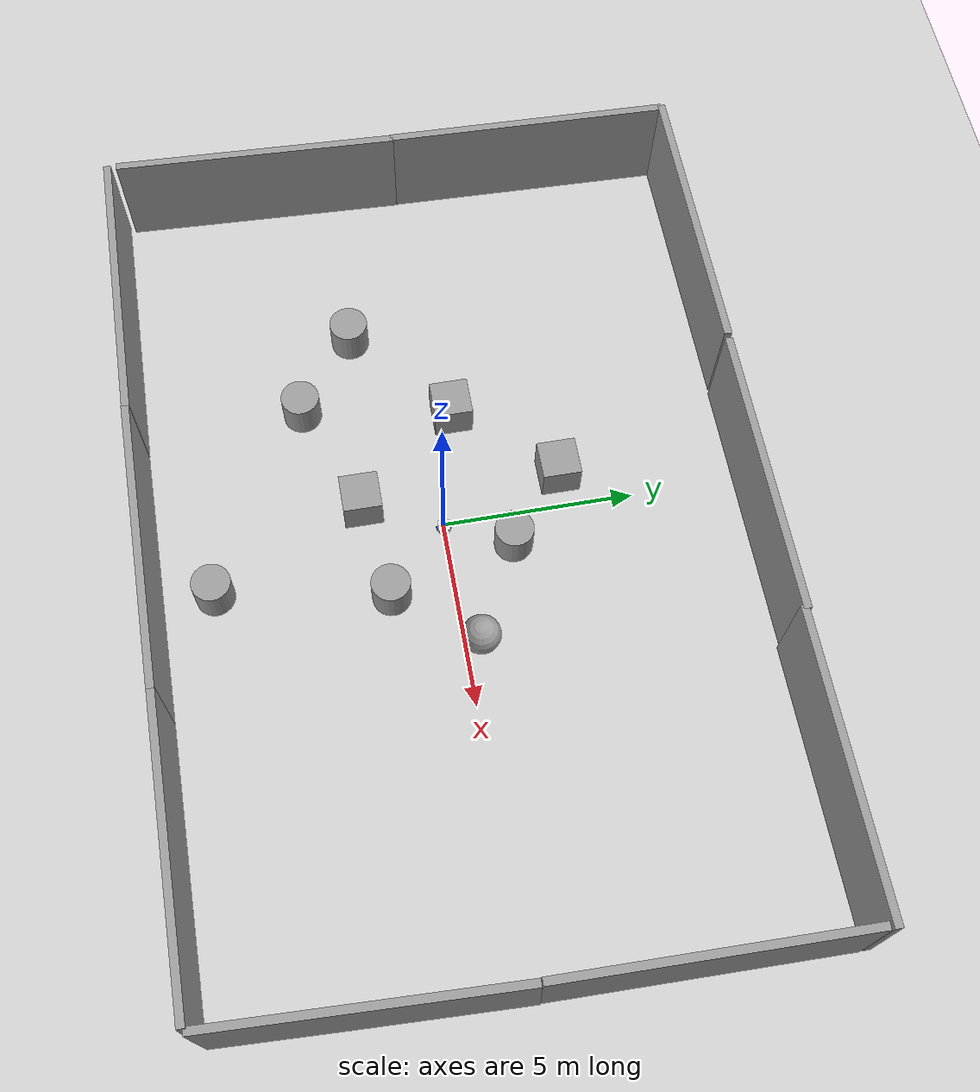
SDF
<sdf version="1.7">
 <world name="default">
  <light name="sun" type="directional">
   <pose>0 0 10 0 -0 0</pose>
   <diffuse>0.8 0.8 0.8 1</diffuse>
   <specular>0.2 0.2 0.2 1</specular>
   <attenuation>
    <range>1000</range>
    <constant>0.9</constant>
    <linear>0.01</linear>
    <quadratic>0.001</quadratic>
   </attenuation>
   <direction>-0.5 0.1 -0.9</direction>
   <spot><inner_angle>0</inner_angle><outer_angle>0</outer_angle><falloff>0</falloff></spot>
  </light>
  <model name="ground_plane">
   <static>1</static>
   <link name="link">
    <collision name="collision">
     <geometry><plane><normal>0 0 1</normal><size>100 100</size></plane></geometry>
     <surface><friction><ode><mu>100</mu><mu2>50</mu2></ode></friction></surface>
    </collision>
    <visual name="visual">
     <cast_shadows>0</cast_shadows>
     <geometry><plane><normal>0 0 1</normal><size>100 100</size></plane></geometry>
     <material>
      <script><uri>file://media/materials/scripts/gazebo.material</uri><name>Gazebo/Grey</name></script>
     </material>
    </visual>
   </link>
  </model>
  <gravity>0 0 -9.8</gravity>
  <magnetic_field>6e-06 2.3e-05 -4.2e-05</magnetic_field>
  <atmosphere type="adiabatic"/>
  <physics type="ode">
   <max_step_size>0.001</max_step_size>
   <real_time_factor>1</real_time_factor>
   <real_time_update_rate>1000</real_time_update_rate>
  </physics>
  <scene><ambient>0.4 0.4 0.4 1</ambient><background>0.7 0.7 0.7 1</background><shadows>1</shadows></scene>
  <audio><device>default</device></audio>
  <spherical_coordinates>
   <surface_model>EARTH_WGS84</surface_model>
   <latitude_deg>0</latitude_deg>
   <longitude_deg>0</longitude_deg>
   <elevation>0</elevation>
   <heading_deg>0</heading_deg>
  </spherical_coordinates>
  <model name="my_bot">
   <link name="base_link">
    <inertial>
     <pose>0.047 0 0.055 0 -0 0</pose>
     <mass>1</mass>
     <inertia>
      <ixx>0.0126103</ixx>
      <ixy>1.0842e-19</ixy>
      <ixz>0.00071</ixz>
      <iyy>0.0124313</iyy>
      <iyz>0</iyz>
      <izz>0.017283</izz>
     </inertia>
    </inertial>
    <collision name="base_link_fixed_joint_lump__chassis_collision">
     <pose>0.05 0 0.075 0 -0 0</pose>
     <geometry><box><size>0.3 0.3 0.15</size></box></geometry>
    </collision>
    <collision name="base_link_fixed_joint_lump__caster_wheel1_collision_1">
     <pose>0.16 -0.11 0 0 -0 0</pose>
     <geometry><sphere><radius>0.03</radius></sphere></geometry>
     <surface><friction><ode><mu>0.001</mu><mu2>0.001</mu2></ode></friction></surface>
    </collision>
    <collision name="base_link_fixed_joint_lump__caster_wheel2_collision_2">
     <pose>0.16 0.11 0 0 -0 0</pose>
     <geometry><sphere><radius>0.03</radius></sphere></geometry>
     <surface><friction><ode><mu>0.001</mu><mu2>0.001</mu2></ode></friction></surface>
    </collision>
    <collision name="base_link_fixed_joint_lump__caster_wheel3_collision_3">
     <pose>-0.05 0.11 0 0 -0 0</pose>
     <geometry><sphere><radius>0.03</radius></sphere></geometry>
     <surface><friction><ode><mu>0.001</mu><mu2>0.001</mu2></ode></friction></surface>
    </collision>
    <collision name="base_link_fixed_joint_lump__caster_wheel4_collision_4">
     <pose>-0.05 -0.11 0 0 -0 0</pose>
     <geometry><sphere><radius>0.035</radius></sphere></geometry>
     <surface><friction><ode><mu>0.001</mu><mu2>0.001</mu2></ode></friction></surface>
    </collision>
    <collision name="base_link_fixed_joint_lump__laser_frame_collision_5">
     <pose>0 0 0.175 0 -0 0</pose>
     <geometry><cylinder><length>0.04</length><radius>0.05</radius></cylinder></geometry>
    </collision>
    <visual name="base_link_fixed_joint_lump__chassis_visual">
     <pose>0.05 0 0.075 0 -0 0</pose>
     <geometry><box><size>0.3 0.3 0.15</size></box></geometry>
     <material>
      <script><name>Gazebo/White</name><uri>file://media/materials/scripts/gazebo.material</uri></script>
     </material>
    </visual>
    <visual name="base_link_fixed_joint_lump__caster_wheel1_visual_1">
     <pose>0.16 -0.11 0 0 -0 0</pose>
     <geometry><sphere><radius>0.03</radius></sphere></geometry>
     <material>
      <script><name>Gazebo/Black</name><uri>file://media/materials/scripts/gazebo.material</uri></script>
     </material>
    </visual>
    <visual name="base_link_fixed_joint_lump__caster_wheel2_visual_2">
     <pose>0.16 0.11 0 0 -0 0</pose>
     <geometry><sphere><radius>0.03</radius></sphere></geometry>
     <material>
      <script><name>Gazebo/Black</name><uri>file://media/materials/scripts/gazebo.material</uri></script>
     </material>
    </visual>
    <visual name="base_link_fixed_joint_lump__caster_wheel3_visual_3">
     <pose>-0.05 0.11 0 0 -0 0</pose>
     <geometry><sphere><radius>0.03</radius></sphere></geometry>
     <material>
      <script><name>Gazebo/Black</name><uri>file://media/materials/scripts/gazebo.material</uri></script>
     </material>
    </visual>
    <visual name="base_link_fixed_joint_lump__caster_wheel4_visual_4">
     <pose>-0.05 -0.11 0 0 -0 0</pose>
     <geometry><sphere><radius>0.035</radius></sphere></geometry>
     <material>
      <script><name>Gazebo/Black</name><uri>file://media/materials/scripts/gazebo.material</uri></script>
     </material>
    </visual>
    <visual name="base_link_fixed_joint_lump__laser_frame_visual_5">
     <pose>0 0 0.175 0 -0 0</pose>
     <geometry><cylinder><length>0.04</length><radius>0.05</radius></cylinder></geometry>
     <material>
      <script><name>Gazebo/Red</name><uri>file://media/materials/scripts/gazebo.material</uri></script>
     </material>
    </visual>
    <sensor name="laser" type="ray">
     <visualize>1</visualize>
     <update_rate>10</update_rate>
     <ray>
      <scan>
       <horizontal>
        <samples>360</samples>
        <min_angle>-3.14</min_angle>
        <max_angle>3.14</max_angle>
        <resolution>1</resolution>
       </horizontal>
       <vertical><samples>1</samples><min_angle>0</min_angle><max_angle>0</max_angle></vertical>
      </scan>
      <range><min>0.3</min><max>12</max></range>
     </ray>
     <plugin name="laser_controller" filename="libgazebo_ros_ray_sensor.so">
      <ros><argument>~/out:=scan</argument></ros>
      <output_type>sensor_msgs/LaserScan</output_type>
      <frame_name>laser_frame</frame_name>
     </plugin>
     <pose>0 0 0.175 0 -0 0</pose>
    </sensor>
   </link>
   <joint name="left_wheel_joint" type="revolute">
    <pose relative_to="base_link">0.06 0.175 0.015 -1.5708 0 0</pose>
    <parent>base_link</parent>
    <child>left_wheel</child>
    <axis>
     <xyz>0 0 1</xyz>
     <limit><lower>-1e+16</lower><upper>1e+16</upper></limit>
     <dynamics><spring_reference>0</spring_reference><spring_stiffness>0</spring_stiffness></dynamics>
    </axis>
   </joint>
   <link name="left_wheel">
    <pose relative_to="left_wheel_joint">0 0 0 0 -0 0</pose>
    <inertial>
     <mass>0.1</mass>
     <inertia>
      <ixx>8.84333e-05</ixx>
      <ixy>0</ixy>
      <ixz>0</ixz>
      <iyy>8.84333e-05</iyy>
      <iyz>0</iyz>
      <izz>0.0001352</izz>
     </inertia>
    </inertial>
    <collision name="left_wheel_collision">
     <geometry><cylinder><length>0.04</length><radius>0.052</radius></cylinder></geometry>
    </collision>
    <visual name="left_wheel_visual">
     <geometry><cylinder><length>0.04</length><radius>0.052</radius></cylinder></geometry>
     <material>
      <script><name>Gazebo/Blue</name><uri>file://media/materials/scripts/gazebo.material</uri></script>
     </material>
    </visual>
   </link>
   <joint name="right_wheel_joint" type="revolute">
    <pose relative_to="base_link">0.06 -0.175 0.015 1.5708 -0 0</pose>
    <parent>base_link</parent>
    <child>right_wheel</child>
    <axis>
     <xyz>0 0 -1</xyz>
     <limit><lower>-1e+16</lower><upper>1e+16</upper></limit>
     <dynamics><spring_reference>0</spring_reference><spring_stiffness>0</spring_stiffness></dynamics>
    </axis>
   </joint>
   <link name="right_wheel">
    <pose relative_to="right_wheel_joint">0 0 0 0 -0 0</pose>
    <inertial>
     <mass>0.1</mass>
     <inertia>
      <ixx>8.84333e-05</ixx>
      <ixy>0</ixy>
      <ixz>0</ixz>
      <iyy>8.84333e-05</iyy>
      <iyz>0</iyz>
      <izz>0.0001352</izz>
     </inertia>
    </inertial>
    <collision name="right_wheel_collision">
     <geometry><cylinder><length>0.04</length><radius>0.052</radius></cylinder></geometry>
    </collision>
    <visual name="right_wheel_visual">
     <geometry><cylinder><length>0.04</length><radius>0.052</radius></cylinder></geometry>
     <material>
      <script><name>Gazebo/Blue</name><uri>file://media/materials/scripts/gazebo.material</uri></script>
     </material>
    </visual>
   </link>
   <static>0</static>
   <plugin name="diff_drive" filename="libgazebo_ros_diff_drive.so">
    <left_joint>left_wheel_joint</left_joint>
    <right_joint>right_wheel_joint</right_joint>
    <wheel_separation>0.35</wheel_separation>
    <wheel_diameter>0.1</wheel_diameter>
    <max_wheel_torque>200</max_wheel_torque>
    <max_wheel_acceleration>10.0</max_wheel_acceleration>
    <odometry_frame>odom</odometry_frame>
    <robot_base_frame>base_link</robot_base_frame>
    <publish_odom>1</publish_odom>
    <publish_odom_tf>1</publish_odom_tf>
    <publish_wheel_tf>1</publish_wheel_tf>
   </plugin>
   <pose>0.04991 -0.002144 0.035911 1e-06 -0.018209 -0.010701</pose>
  </model>
  <model name="unit_cylinder">
   <pose>1.79229 -1.62107 0.499998 3e-06 -2e-06 0</pose>
   <link name="link">
    <inertial>
     <mass>1</mass>
     <inertia><ixx>0.145833</ixx><ixy>0</ixy><ixz>0</ixz><iyy>0.145833</iyy><iyz>0</iyz><izz>0.125</izz></inertia>
    </inertial>
    <collision name="collision">
     <geometry><cylinder><radius>0.5</radius><length>1</length></cylinder></geometry>
    </collision>
    <visual name="visual">
     <geometry><cylinder><radius>0.5</radius><length>1</length></cylinder></geometry>
     <material>
      <script><name>Gazebo/Grey</name><uri>file://media/materials/scripts/gazebo.material</uri></script>
     </material>
    </visual>
   </link>
  </model>
  <model name="unit_box">
   <pose>-0.832031 -2.00817 0.499995 0 -1e-05 0</pose>
   <link name="link">
    <inertial>
     <mass>1</mass>
     <inertia>
      <ixx>0.166667</ixx>
      <ixy>0</ixy>
      <ixz>0</ixz>
      <iyy>0.166667</iyy>
      <iyz>0</iyz>
      <izz>0.166667</izz>
     </inertia>
    </inertial>
    <collision name="collision"><geometry><box><size>1 1 1</size></box></geometry></collision>
    <visual name="visual">
     <geometry><box><size>1 1 1</size></box></geometry>
     <material>
      <script><name>Gazebo/Grey</name><uri>file://media/materials/scripts/gazebo.material</uri></script>
     </material>
    </visual>
   </link>
  </model>
  <model name="unit_cylinder_0">
   <pose>0.85268 1.68821 0.499994 -4e-06 -4e-06 -0</pose>
   <link name="link">
    <inertial>
     <mass>1</mass>
     <inertia><ixx>0.145833</ixx><ixy>0</ixy><ixz>0</ixz><iyy>0.145833</iyy><iyz>0</iyz><izz>0.125</izz></inertia>
    </inertial>
    <collision name="collision">
     <geometry><cylinder><radius>0.5</radius><length>1</length></cylinder></geometry>
    </collision>
    <visual name="visual">
     <geometry><cylinder><radius>0.5</radius><length>1</length></cylinder></geometry>
     <material>
      <script><name>Gazebo/Grey</name><uri>file://media/materials/scripts/gazebo.material</uri></script>
     </material>
    </visual>
   </link>
  </model>
  <model name="unit_box_0">
   <pose>-3.14569 0.736763 0.499995 0 -1e-05 0</pose>
   <link name="link">
    <inertial>
     <mass>1</mass>
     <inertia>
      <ixx>0.166667</ixx>
      <ixy>0</ixy>
      <ixz>0</ixz>
      <iyy>0.166667</iyy>
      <iyz>0</iyz>
      <izz>0.166667</izz>
     </inertia>
    </inertial>
    <collision name="collision"><geometry><box><size>1 1 1</size></box></geometry></collision>
    <visual name="visual">
     <geometry><box><size>1 1 1</size></box></geometry>
     <material>
      <script><name>Gazebo/Grey</name><uri>file://media/materials/scripts/gazebo.material</uri></script>
     </material>
    </visual>
   </link>
  </model>
  <model name="unit_sphere">
   <pose>3.3437 0.400387 0.5 0 -0 0</pose>
   <link name="link">
    <inertial>
     <mass>1</mass>
     <inertia><ixx>0.1</ixx><ixy>0</ixy><ixz>0</ixz><iyy>0.1</iyy><iyz>0</iyz><izz>0.1</izz></inertia>
    </inertial>
    <collision name="collision"><geometry><sphere><radius>0.5</radius></sphere></geometry></collision>
    <visual name="visual">
     <geometry><sphere><radius>0.5</radius></sphere></geometry>
     <material>
      <script><name>Gazebo/Grey</name><uri>file://media/materials/scripts/gazebo.material</uri></script>
     </material>
    </visual>
   </link>
  </model>
  <model name="unit_cylinder_1">
   <pose>-3.82384 -3.17903 0.499992 -3e-06 3e-06 0</pose>
   <link name="link">
    <inertial>
     <mass>1</mass>
     <inertia><ixx>0.145833</ixx><ixy>0</ixy><ixz>0</ixz><iyy>0.145833</iyy><iyz>0</iyz><izz>0.125</izz></inertia>
    </inertial>
    <collision name="collision">
     <geometry><cylinder><radius>0.5</radius><length>1</length></cylinder></geometry>
    </collision>
    <visual name="visual">
     <geometry><cylinder><radius>0.5</radius><length>1</length></cylinder></geometry>
     <material>
      <script><name>Gazebo/Grey</name><uri>file://media/materials/scripts/gazebo.material</uri></script>
     </material>
    </visual>
   </link>
  </model>
  <model name="unit_box_1">
   <pose>-0.917757 3.1908 0.499995 -1e-05 -0 -0</pose>
   <link name="link">
    <inertial>
     <mass>1</mass>
     <inertia>
      <ixx>0.166667</ixx>
      <ixy>0</ixy>
      <ixz>0</ixz>
      <iyy>0.166667</iyy>
      <iyz>0</iyz>
      <izz>0.166667</izz>
     </inertia>
    </inertial>
    <collision name="collision"><geometry><box><size>1 1 1</size></box></geometry></collision>
    <visual name="visual">
     <geometry><box><size>1 1 1</size></box></geometry>
     <material>
      <script><name>Gazebo/Grey</name><uri>file://media/materials/scripts/gazebo.material</uri></script>
     </material>
    </visual>
   </link>
  </model>
  <model name="unit_cylinder_2">
   <pose>-5.8745 -1.60409 0.499998 3e-06 4e-06 -0</pose>
   <link name="link">
    <inertial>
     <mass>1</mass>
     <inertia><ixx>0.145833</ixx><ixy>0</ixy><ixz>0</ixz><iyy>0.145833</iyy><iyz>0</iyz><izz>0.125</izz></inertia>
    </inertial>
    <collision name="collision">
     <geometry><cylinder><radius>0.5</radius><length>1</length></cylinder></geometry>
    </collision>
    <visual name="visual">
     <geometry><cylinder><radius>0.5</radius><length>1</length></cylinder></geometry>
     <material>
      <script><name>Gazebo/Grey</name><uri>file://media/materials/scripts/gazebo.material</uri></script>
     </material>
    </visual>
   </link>
  </model>
  <model name="unit_cylinder_3">
   <pose>1.04115 -6.02521 0.499992 -3e-06 -4e-06 -0</pose>
   <link name="link">
    <inertial>
     <mass>1</mass>
     <inertia><ixx>0.145833</ixx><ixy>0</ixy><ixz>0</ixz><iyy>0.145833</iyy><iyz>0</iyz><izz>0.125</izz></inertia>
    </inertial>
    <collision name="collision">
     <geometry><cylinder><radius>0.5</radius><length>1</length></cylinder></geometry>
    </collision>
    <visual name="visual">
     <geometry><cylinder><radius>0.5</radius><length>1</length></cylinder></geometry>
     <material>
      <script><name>Gazebo/Grey</name><uri>file://media/materials/scripts/gazebo.material</uri></script>
     </material>
    </visual>
   </link>
  </model>
  <model name="grey_wall_1">
   <link name="link">
    <pose>0.503569 -1.25368 1.4 0 -0 1.55466</pose>
    <visual name="visual">
     <cast_shadows>0</cast_shadows>
     <geometry><box><size>7.5 0.2 2.8</size></box></geometry>
     <material>
      <script>
       <uri>model://grey_wall/materials/scripts</uri>
       <uri>model://grey_wall/materials/textures</uri>
       <name>vrc/grey_wall</name>
      </script>
      <shader type="pixel"/>
     </material>
    </visual>
    <collision name="collision">
     <geometry><box><size>7.5 0.2 2.8</size></box></geometry>
     <surface>
      <friction>
       <ode><mu>1</mu><mu2>1</mu2><fdir1>0 0 0</fdir1><slip1>0</slip1><slip2>0</slip2></ode>
       <torsional>
        <coefficient>1</coefficient>
        <patch_radius>0</patch_radius>
        <surface_radius>0</surface_radius>
        <use_patch_radius>1</use_patch_radius>
        <ode><slip>0</slip></ode>
       </torsional>
      </friction>
      <bounce><restitution_coefficient>0</restitution_coefficient><threshold>1e+06</threshold></bounce>
      <contact>
       <collide_without_contact>0</collide_without_contact>
       <collide_without_contact_bitmask>1</collide_without_contact_bitmask>
       <collide_bitmask>1</collide_bitmask>
       <ode>
        <soft_cfm>0</soft_cfm>
        <soft_erp>0.2</soft_erp>
        <kp>1e+13</kp>
        <kd>1</kd>
        <max_vel>0.01</max_vel>
        <min_depth>0</min_depth>
       </ode>
       <bullet>
        <split_impulse>1</split_impulse>
        <split_impulse_penetration_threshold>-0.01</split_impulse_penetration_threshold>
        <soft_cfm>0</soft_cfm>
        <soft_erp>0.2</soft_erp>
        <kp>1e+13</kp>
        <kd>1</kd>
       </bullet>
      </contact>
     </surface>
    </collision>
   </link>
   <model name="grey_wall">
    <static>1</static>
    <link name="link">
     <pose>0 0 1.4 0 -0 0</pose>
     <collision name="collision"><geometry><box><size>7.5 0.2 2.8</size></box></geometry></collision>
     <visual name="visual">
      <cast_shadows>0</cast_shadows>
      <geometry><box><size>7.5 0.2 2.8</size></box></geometry>
      <material>
       <script>
        <uri>model://grey_wall/materials/scripts</uri>
        <uri>model://grey_wall/materials/textures</uri>
        <name>vrc/grey_wall</name>
       </script>
      </material>
     </visual>
    </link>
    <pose>0.314258 -8.67758 0 -0.001071 -0.037863 1.52617</pose>
   </model>
   <model name="grey_wall_0">
    <static>1</static>
    <link name="link">
     <pose>0 0 1.4 0 -0 0</pose>
     <collision name="collision"><geometry><box><size>7.5 0.2 2.8</size></box></geometry></collision>
     <visual name="visual">
      <cast_shadows>0</cast_shadows>
      <geometry><box><size>7.5 0.2 2.8</size></box></geometry>
      <material>
       <script>
        <uri>model://grey_wall/materials/scripts</uri>
        <uri>model://grey_wall/materials/textures</uri>
        <name>vrc/grey_wall</name>
       </script>
      </material>
     </visual>
    </link>
    <pose>-3.65154 -12.5442 0 0 -0 0</pose>
   </model>
   <model name="grey_wall_1">
    <static>1</static>
    <link name="link">
     <pose>0 0 1.4 0 -0 0</pose>
     <collision name="collision"><geometry><box><size>7.5 0.2 2.8</size></box></geometry></collision>
     <visual name="visual">
      <cast_shadows>0</cast_shadows>
      <geometry><box><size>7.5 0.2 2.8</size></box></geometry>
      <material>
       <script>
        <uri>model://grey_wall/materials/scripts</uri>
        <uri>model://grey_wall/materials/textures</uri>
        <name>vrc/grey_wall</name>
       </script>
      </material>
     </visual>
    </link>
    <pose>-11.1329 -12.5459 0 0 -0 0</pose>
   </model>
   <model name="grey_wall_2">
    <static>1</static>
    <link name="link">
     <pose>0 0 1.4 0 -0 0</pose>
     <collision name="collision"><geometry><box><size>7.5 0.2 2.8</size></box></geometry></collision>
     <visual name="visual">
      <cast_shadows>0</cast_shadows>
      <geometry><box><size>7.5 0.2 2.8</size></box></geometry>
      <material>
       <script>
        <uri>model://grey_wall/materials/scripts</uri>
        <uri>model://grey_wall/materials/textures</uri>
        <name>vrc/grey_wall</name>
       </script>
      </material>
     </visual>
    </link>
    <pose>-18.6149 -12.4913 0 0 0 -0.011856</pose>
   </model>
   <model name="grey_wall_3">
    <static>1</static>
    <link name="link">
     <pose>0 0 1.4 0 -0 0</pose>
     <collision name="collision"><geometry><box><size>7.5 0.2 2.8</size></box></geometry></collision>
     <visual name="visual">
      <cast_shadows>0</cast_shadows>
      <geometry><box><size>7.5 0.2 2.8</size></box></geometry>
      <material>
       <script>
        <uri>model://grey_wall/materials/scripts</uri>
        <uri>model://grey_wall/materials/textures</uri>
        <name>vrc/grey_wall</name>
       </script>
      </material>
     </visual>
    </link>
    <pose>-18.1292 2.74615 0 0 -0 0</pose>
   </model>
   <model name="grey_wall_4">
    <static>1</static>
    <link name="link">
     <pose>0 0 1.4 0 -0 0</pose>
     <collision name="collision"><geometry><box><size>7.5 0.2 2.8</size></box></geometry></collision>
     <visual name="visual">
      <cast_shadows>0</cast_shadows>
      <geometry><box><size>7.5 0.2 2.8</size></box></geometry>
      <material>
       <script>
        <uri>model://grey_wall/materials/scripts</uri>
        <uri>model://grey_wall/materials/textures</uri>
        <name>vrc/grey_wall</name>
       </script>
      </material>
     </visual>
    </link>
    <pose>-21.9282 -1.02941 0 0 0 -1.59762</pose>
   </model>
   <model name="grey_wall_5">
    <static>1</static>
    <link name="link">
     <pose>0 0 1.4 0 -0 0</pose>
     <collision name="collision"><geometry><box><size>7.5 0.2 2.8</size></box></geometry></collision>
     <visual name="visual">
      <cast_shadows>0</cast_shadows>
      <geometry><box><size>7.5 0.2 2.8</size></box></geometry>
      <material>
       <script>
        <uri>model://grey_wall/materials/scripts</uri>
        <uri>model://grey_wall/materials/textures</uri>
        <name>vrc/grey_wall</name>
       </script>
      </material>
     </visual>
    </link>
    <pose>-22.1655 -8.45764 0 0 0 -1.61196</pose>
   </model>
   <static>1</static>
   <pose>11.6048 5.08913 0 0 -0 0</pose>
  </model>
  <model name="grey_wall_6">
   <static>1</static>
   <link name="link">
    <pose>0 0 1.4 0 -0 0</pose>
    <collision name="collision"><geometry><box><size>7.5 0.2 2.8</size></box></geometry></collision>
    <visual name="visual">
     <cast_shadows>0</cast_shadows>
     <geometry><box><size>7.5 0.2 2.8</size></box></geometry>
     <material>
      <script>
       <uri>model://grey_wall/materials/scripts</uri>
       <uri>model://grey_wall/materials/textures</uri>
       <name>vrc/grey_wall</name>
      </script>
     </material>
    </visual>
   </link>
   <pose>1.10549 7.8124 0 0 -0 0</pose>
  </model>
  <model name="grey_wall_7">
   <static>1</static>
   <link name="link">
    <pose>0 0 1.4 0 -0 0</pose>
    <collision name="collision"><geometry><box><size>7.5 0.2 2.8</size></box></geometry></collision>
    <visual name="visual">
     <cast_shadows>0</cast_shadows>
     <geometry><box><size>7.5 0.2 2.8</size></box></geometry>
     <material>
      <script>
       <uri>model://grey_wall/materials/scripts</uri>
       <uri>model://grey_wall/materials/textures</uri>
       <name>vrc/grey_wall</name>
      </script>
     </material>
    </visual>
   </link>
   <pose>8.51233 7.74988 0 0 -0 0</pose>
  </model>
 </world>
</sdf>
